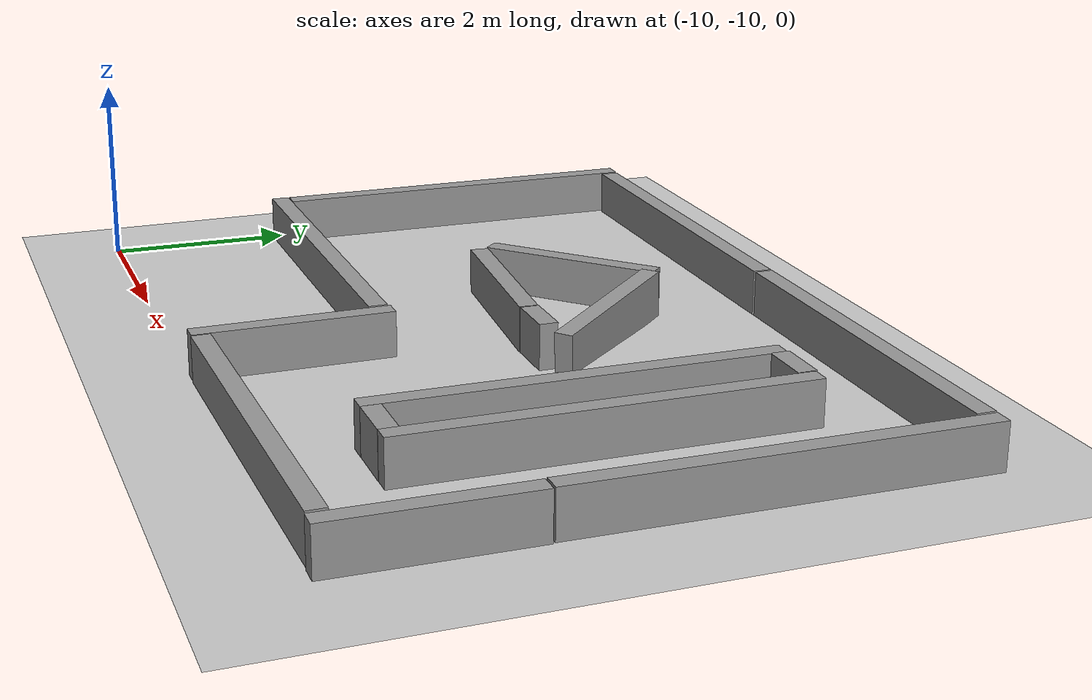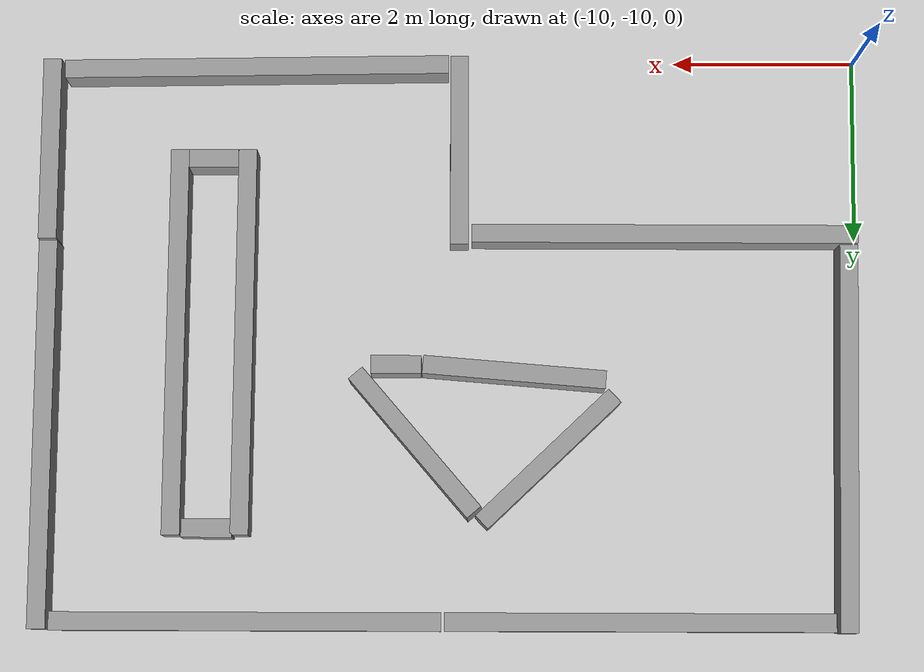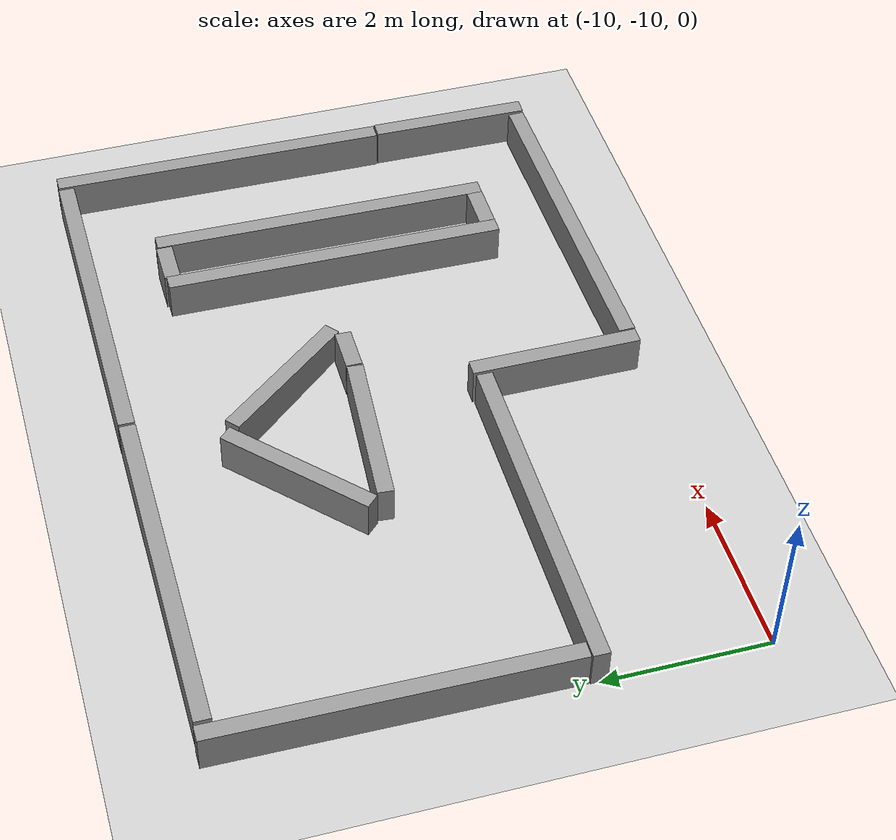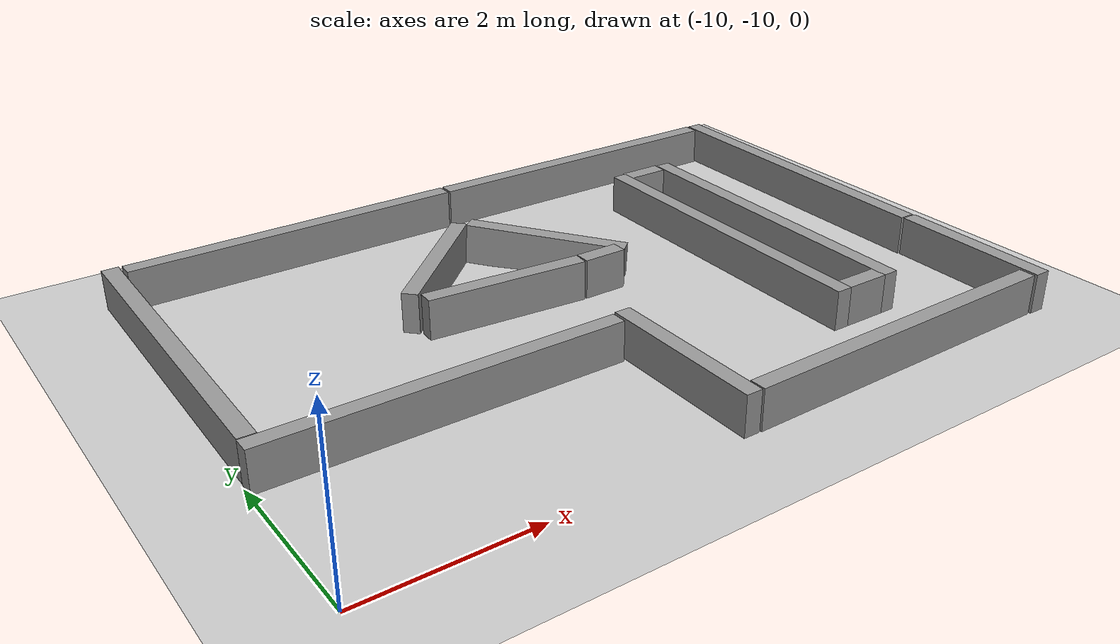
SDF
<sdf version="1.7">
 <world name="default">
  <light name="sun" type="directional">
   <pose>0 0 10 0 -0 0</pose>
   <diffuse>0.8 0.8 0.8 1</diffuse>
   <specular>0.2 0.2 0.2 1</specular>
   <attenuation>
    <range>1000</range>
    <constant>0.9</constant>
    <linear>0.01</linear>
    <quadratic>0.001</quadratic>
   </attenuation>
   <direction>-0.5 0.1 -0.9</direction>
   <spot><inner_angle>0</inner_angle><outer_angle>0</outer_angle><falloff>0</falloff></spot>
  </light>
  <model name="ground_plane">
   <static>1</static>
   <link name="link">
    <collision name="collision">
     <geometry><plane><normal>0 0 1</normal><size>100 100</size></plane></geometry>
     <surface>
      <contact><collide_bitmask>65535</collide_bitmask></contact>
      <friction><ode><mu>100</mu><mu2>50</mu2></ode></friction>
     </surface>
    </collision>
    <visual name="visual">
     <cast_shadows>0</cast_shadows>
     <geometry><plane><normal>0 0 1</normal><size>100 100</size></plane></geometry>
     <material>
      <script><uri>file://media/materials/scripts/gazebo.material</uri><name>Gazebo/Grey</name></script>
     </material>
    </visual>
   </link>
  </model>
  <gravity>0 0 -9.8</gravity>
  <magnetic_field>6e-06 2.3e-05 -4.2e-05</magnetic_field>
  <atmosphere type="adiabatic"/>
  <physics type="ode">
   <max_step_size>0.001</max_step_size>
   <real_time_factor>1</real_time_factor>
   <real_time_update_rate>1000</real_time_update_rate>
  </physics>
  <scene><ambient>0.4 0.4 0.4 1</ambient><background>0.7 0.7 0.7 1</background><shadows>1</shadows></scene>
  <audio><device>default</device></audio>
  <spherical_coordinates>
   <surface_model>EARTH_WGS84</surface_model>
   <latitude_deg>0</latitude_deg>
   <longitude_deg>0</longitude_deg>
   <elevation>0</elevation>
   <heading_deg>0</heading_deg>
  </spherical_coordinates>
  <model name="wall_SDP">
   <link name="link">
    <pose>-1.45297 0 0.227242 0 -0 0</pose>
    <inertial>
     <mass>0.102624</mass>
     <inertia>
      <ixx>0.0025526</ixx>
      <ixy>0</ixy>
      <ixz>0</ixz>
      <iyy>0.155853</iyy>
      <iyz>0</iyz>
      <izz>0.153985</izz>
     </inertia>
    </inertial>
    <visual name="visual">
     <cast_shadows>0</cast_shadows>
     <geometry><box><size>4.2386 0.2 0.508408</size></box></geometry>
     <material>
      <script>
       <uri>model://grey_wall/materials/scripts</uri>
       <uri>model://grey_wall/materials/textures</uri>
       <name>vrc/grey_wall</name>
      </script>
      <shader type="pixel"><normal_map>__default__</normal_map></shader>
     </material>
    </visual>
    <collision name="collision">
     <geometry><box><size>4.2386 0.2 0.508408</size></box></geometry>
     <surface>
      <friction>
       <ode><mu>1</mu><mu2>1</mu2><fdir1>0 0 0</fdir1><slip1>0</slip1><slip2>0</slip2></ode>
       <torsional>
        <coefficient>1</coefficient>
        <patch_radius>0</patch_radius>
        <surface_radius>0</surface_radius>
        <use_patch_radius>1</use_patch_radius>
        <ode><slip>0</slip></ode>
       </torsional>
      </friction>
      <bounce><restitution_coefficient>0</restitution_coefficient><threshold>1e+06</threshold></bounce>
      <contact>
       <collide_without_contact>0</collide_without_contact>
       <collide_without_contact_bitmask>1</collide_without_contact_bitmask>
       <collide_bitmask>1</collide_bitmask>
       <ode>
        <soft_cfm>0</soft_cfm>
        <soft_erp>0.2</soft_erp>
        <kp>1e+13</kp>
        <kd>1</kd>
        <max_vel>0.01</max_vel>
        <min_depth>0</min_depth>
       </ode>
       <bullet>
        <split_impulse>1</split_impulse>
        <split_impulse_penetration_threshold>-0.01</split_impulse_penetration_threshold>
        <soft_cfm>0</soft_cfm>
        <soft_erp>0.2</soft_erp>
        <kp>1e+13</kp>
        <kd>1</kd>
       </bullet>
      </contact>
     </surface>
    </collision>
   </link>
   <static>1</static>
   <pose>-1.91046 -9.83679 0 0 -0 0.01521</pose>
  </model>
  <model name="wall_SDP_clone">
   <link name="link">
    <pose>-1.45297 0 0.227242 0 -0 0</pose>
    <inertial>
     <mass>0.102624</mass>
     <inertia>
      <ixx>0.0025526</ixx>
      <ixy>0</ixy>
      <ixz>0</ixz>
      <iyy>0.155853</iyy>
      <iyz>0</iyz>
      <izz>0.153985</izz>
     </inertia>
    </inertial>
    <visual name="visual">
     <cast_shadows>0</cast_shadows>
     <geometry><box><size>4.2386 0.2 0.508408</size></box></geometry>
     <material>
      <script>
       <uri>model://grey_wall/materials/scripts</uri>
       <uri>model://grey_wall/materials/textures</uri>
       <name>vrc/grey_wall</name>
      </script>
      <shader type="pixel"><normal_map>__default__</normal_map></shader>
     </material>
    </visual>
    <collision name="collision">
     <geometry><box><size>4.2386 0.2 0.508408</size></box></geometry>
     <surface>
      <friction>
       <ode><mu>1</mu><mu2>1</mu2><fdir1>0 0 0</fdir1><slip1>0</slip1><slip2>0</slip2></ode>
       <torsional>
        <coefficient>1</coefficient>
        <patch_radius>0</patch_radius>
        <surface_radius>0</surface_radius>
        <use_patch_radius>1</use_patch_radius>
        <ode><slip>0</slip></ode>
       </torsional>
      </friction>
      <bounce><restitution_coefficient>0</restitution_coefficient><threshold>1e+06</threshold></bounce>
      <contact>
       <collide_without_contact>0</collide_without_contact>
       <collide_without_contact_bitmask>1</collide_without_contact_bitmask>
       <collide_bitmask>1</collide_bitmask>
       <ode>
        <soft_cfm>0</soft_cfm>
        <soft_erp>0.2</soft_erp>
        <kp>1e+13</kp>
        <kd>1</kd>
        <max_vel>0.01</max_vel>
        <min_depth>0</min_depth>
       </ode>
       <bullet>
        <split_impulse>1</split_impulse>
        <split_impulse_penetration_threshold>-0.01</split_impulse_penetration_threshold>
        <soft_cfm>0</soft_cfm>
        <soft_erp>0.2</soft_erp>
        <kp>1e+13</kp>
        <kd>1</kd>
       </bullet>
      </contact>
     </surface>
    </collision>
   </link>
   <static>1</static>
   <pose>-6.40639 -8.00603 0 0 -0 0</pose>
  </model>
  <model name="wall_SDP_clone_0">
   <link name="link">
    <pose>-1.45297 0 0.227242 0 -0 0</pose>
    <inertial>
     <mass>0.102624</mass>
     <inertia>
      <ixx>0.0025526</ixx>
      <ixy>0</ixy>
      <ixz>0</ixz>
      <iyy>0.155853</iyy>
      <iyz>0</iyz>
      <izz>0.153985</izz>
     </inertia>
    </inertial>
    <visual name="visual">
     <cast_shadows>0</cast_shadows>
     <geometry><box><size>4.2386 0.2 0.508408</size></box></geometry>
     <material>
      <script>
       <uri>model://grey_wall/materials/scripts</uri>
       <uri>model://grey_wall/materials/textures</uri>
       <name>vrc/grey_wall</name>
      </script>
      <shader type="pixel"><normal_map>__default__</normal_map></shader>
     </material>
    </visual>
    <collision name="collision">
     <geometry><box><size>4.2386 0.2 0.508408</size></box></geometry>
     <surface>
      <friction>
       <ode><mu>1</mu><mu2>1</mu2><fdir1>0 0 0</fdir1><slip1>0</slip1><slip2>0</slip2></ode>
       <torsional>
        <coefficient>1</coefficient>
        <patch_radius>0</patch_radius>
        <surface_radius>0</surface_radius>
        <use_patch_radius>1</use_patch_radius>
        <ode><slip>0</slip></ode>
       </torsional>
      </friction>
      <bounce><restitution_coefficient>0</restitution_coefficient><threshold>1e+06</threshold></bounce>
      <contact>
       <collide_without_contact>0</collide_without_contact>
       <collide_without_contact_bitmask>1</collide_without_contact_bitmask>
       <collide_bitmask>1</collide_bitmask>
       <ode>
        <soft_cfm>0</soft_cfm>
        <soft_erp>0.2</soft_erp>
        <kp>1e+13</kp>
        <kd>1</kd>
        <max_vel>0.01</max_vel>
        <min_depth>0</min_depth>
       </ode>
       <bullet>
        <split_impulse>1</split_impulse>
        <split_impulse_penetration_threshold>-0.01</split_impulse_penetration_threshold>
        <soft_cfm>0</soft_cfm>
        <soft_erp>0.2</soft_erp>
        <kp>1e+13</kp>
        <kd>1</kd>
       </bullet>
      </contact>
     </surface>
    </collision>
   </link>
   <static>1</static>
   <pose>-9.83368 -4.32184 0 0 -0 1.55936</pose>
  </model>
  <model name="wall_SDP_wall_short">
   <link name="link">
    <pose>-0.408909 0 0.227242 0 -0 0</pose>
    <inertial>
     <mass>0.0508446</mass>
     <inertia>
      <ixx>0.00126467</ixx>
      <ixy>0</ixy>
      <ixz>0</ixz>
      <iyy>0.0197805</iyy>
      <iyz>0</iyz>
      <izz>0.0188548</izz>
     </inertia>
    </inertial>
    <visual name="visual">
     <cast_shadows>0</cast_shadows>
     <geometry><box><size>2.09999 0.2 0.508408</size></box></geometry>
     <material>
      <script>
       <uri>model://grey_wall/materials/scripts</uri>
       <uri>model://grey_wall/materials/textures</uri>
       <name>vrc/grey_wall</name>
      </script>
      <shader type="pixel"><normal_map>__default__</normal_map></shader>
     </material>
    </visual>
    <collision name="collision">
     <geometry><box><size>2.09999 0.2 0.508408</size></box></geometry>
     <surface>
      <friction>
       <ode><mu>1</mu><mu2>1</mu2><fdir1>0 0 0</fdir1><slip1>0</slip1><slip2>0</slip2></ode>
       <torsional>
        <coefficient>1</coefficient>
        <patch_radius>0</patch_radius>
        <surface_radius>0</surface_radius>
        <use_patch_radius>1</use_patch_radius>
        <ode><slip>0</slip></ode>
       </torsional>
      </friction>
      <bounce><restitution_coefficient>0</restitution_coefficient><threshold>1e+06</threshold></bounce>
      <contact>
       <collide_without_contact>0</collide_without_contact>
       <collide_without_contact_bitmask>1</collide_without_contact_bitmask>
       <collide_bitmask>1</collide_bitmask>
       <ode>
        <soft_cfm>0</soft_cfm>
        <soft_erp>0.2</soft_erp>
        <kp>1e+13</kp>
        <kd>1</kd>
        <max_vel>0.01</max_vel>
        <min_depth>0</min_depth>
       </ode>
       <bullet>
        <split_impulse>1</split_impulse>
        <split_impulse_penetration_threshold>-0.01</split_impulse_penetration_threshold>
        <soft_cfm>0</soft_cfm>
        <soft_erp>0.2</soft_erp>
        <kp>1e+13</kp>
        <kd>1</kd>
       </bullet>
      </contact>
     </surface>
    </collision>
   </link>
   <static>1</static>
   <pose>-5.60143 -9.34195 0 0 0 -1.56896</pose>
  </model>
  <model name="wall_SDP_clone_clone">
   <link name="link">
    <pose>-1.45297 0 0.227242 0 -0 0</pose>
    <inertial>
     <mass>0.102624</mass>
     <inertia>
      <ixx>0.0025526</ixx>
      <ixy>0</ixy>
      <ixz>0</ixz>
      <iyy>0.155853</iyy>
      <iyz>0</iyz>
      <izz>0.153985</izz>
     </inertia>
    </inertial>
    <visual name="visual">
     <cast_shadows>0</cast_shadows>
     <geometry><box><size>4.2386 0.2 0.508408</size></box></geometry>
     <material>
      <script>
       <uri>model://grey_wall/materials/scripts</uri>
       <uri>model://grey_wall/materials/textures</uri>
       <name>vrc/grey_wall</name>
      </script>
      <shader type="pixel"><normal_map>__default__</normal_map></shader>
     </material>
    </visual>
    <collision name="collision">
     <geometry><box><size>4.2386 0.2 0.508408</size></box></geometry>
     <surface>
      <friction>
       <ode><mu>1</mu><mu2>1</mu2><fdir1>0 0 0</fdir1><slip1>0</slip1><slip2>0</slip2></ode>
       <torsional>
        <coefficient>1</coefficient>
        <patch_radius>0</patch_radius>
        <surface_radius>0</surface_radius>
        <use_patch_radius>1</use_patch_radius>
        <ode><slip>0</slip></ode>
       </torsional>
      </friction>
      <bounce><restitution_coefficient>0</restitution_coefficient><threshold>1e+06</threshold></bounce>
      <contact>
       <collide_without_contact>0</collide_without_contact>
       <collide_without_contact_bitmask>1</collide_without_contact_bitmask>
       <collide_bitmask>1</collide_bitmask>
       <ode>
        <soft_cfm>0</soft_cfm>
        <soft_erp>0.2</soft_erp>
        <kp>1e+13</kp>
        <kd>1</kd>
        <max_vel>0.01</max_vel>
        <min_depth>0</min_depth>
       </ode>
       <bullet>
        <split_impulse>1</split_impulse>
        <split_impulse_penetration_threshold>-0.01</split_impulse_penetration_threshold>
        <soft_cfm>0</soft_cfm>
        <soft_erp>0.2</soft_erp>
        <kp>1e+13</kp>
        <kd>1</kd>
       </bullet>
      </contact>
     </surface>
    </collision>
   </link>
   <static>1</static>
   <pose>-6.11493 -3.76492 0 0 -0 0</pose>
  </model>
  <model name="wall_SDP_clone_clone_0">
   <link name="link">
    <pose>-1.45297 0 0.227242 0 -0 0</pose>
    <inertial>
     <mass>0.102624</mass>
     <inertia>
      <ixx>0.0025526</ixx>
      <ixy>0</ixy>
      <ixz>0</ixz>
      <iyy>0.155853</iyy>
      <iyz>0</iyz>
      <izz>0.153985</izz>
     </inertia>
    </inertial>
    <visual name="visual">
     <cast_shadows>0</cast_shadows>
     <geometry><box><size>4.2386 0.2 0.508408</size></box></geometry>
     <material>
      <script>
       <uri>model://grey_wall/materials/scripts</uri>
       <uri>model://grey_wall/materials/textures</uri>
       <name>vrc/grey_wall</name>
      </script>
      <shader type="pixel"><normal_map>__default__</normal_map></shader>
     </material>
    </visual>
    <collision name="collision">
     <geometry><box><size>4.2386 0.2 0.508408</size></box></geometry>
     <surface>
      <friction>
       <ode><mu>1</mu><mu2>1</mu2><fdir1>0 0 0</fdir1><slip1>0</slip1><slip2>0</slip2></ode>
       <torsional>
        <coefficient>1</coefficient>
        <patch_radius>0</patch_radius>
        <surface_radius>0</surface_radius>
        <use_patch_radius>1</use_patch_radius>
        <ode><slip>0</slip></ode>
       </torsional>
      </friction>
      <bounce><restitution_coefficient>0</restitution_coefficient><threshold>1e+06</threshold></bounce>
      <contact>
       <collide_without_contact>0</collide_without_contact>
       <collide_without_contact_bitmask>1</collide_without_contact_bitmask>
       <collide_bitmask>1</collide_bitmask>
       <ode>
        <soft_cfm>0</soft_cfm>
        <soft_erp>0.2</soft_erp>
        <kp>1e+13</kp>
        <kd>1</kd>
        <max_vel>0.01</max_vel>
        <min_depth>0</min_depth>
       </ode>
       <bullet>
        <split_impulse>1</split_impulse>
        <split_impulse_penetration_threshold>-0.01</split_impulse_penetration_threshold>
        <soft_cfm>0</soft_cfm>
        <soft_erp>0.2</soft_erp>
        <kp>1e+13</kp>
        <kd>1</kd>
       </bullet>
      </contact>
     </surface>
    </collision>
   </link>
   <static>1</static>
   <pose>-1.84578 -3.76268 0 0 -0 0</pose>
  </model>
  <model name="wall_SDP_clone_0_clone">
   <link name="link">
    <pose>-1.45297 0 0.227242 0 -0 0</pose>
    <inertial>
     <mass>0.102624</mass>
     <inertia>
      <ixx>0.0025526</ixx>
      <ixy>0</ixy>
      <ixz>0</ixz>
      <iyy>0.155853</iyy>
      <iyz>0</iyz>
      <izz>0.153985</izz>
     </inertia>
    </inertial>
    <visual name="visual">
     <cast_shadows>0</cast_shadows>
     <geometry><box><size>4.2386 0.2 0.508408</size></box></geometry>
     <material>
      <script>
       <uri>model://grey_wall/materials/scripts</uri>
       <uri>model://grey_wall/materials/textures</uri>
       <name>vrc/grey_wall</name>
      </script>
      <shader type="pixel"><normal_map>__default__</normal_map></shader>
     </material>
    </visual>
    <collision name="collision">
     <geometry><box><size>4.2386 0.2 0.508408</size></box></geometry>
     <surface>
      <friction>
       <ode><mu>1</mu><mu2>1</mu2><fdir1>0 0 0</fdir1><slip1>0</slip1><slip2>0</slip2></ode>
       <torsional>
        <coefficient>1</coefficient>
        <patch_radius>0</patch_radius>
        <surface_radius>0</surface_radius>
        <use_patch_radius>1</use_patch_radius>
        <ode><slip>0</slip></ode>
       </torsional>
      </friction>
      <bounce><restitution_coefficient>0</restitution_coefficient><threshold>1e+06</threshold></bounce>
      <contact>
       <collide_without_contact>0</collide_without_contact>
       <collide_without_contact_bitmask>1</collide_without_contact_bitmask>
       <collide_bitmask>1</collide_bitmask>
       <ode>
        <soft_cfm>0</soft_cfm>
        <soft_erp>0.2</soft_erp>
        <kp>1e+13</kp>
        <kd>1</kd>
        <max_vel>0.01</max_vel>
        <min_depth>0</min_depth>
       </ode>
       <bullet>
        <split_impulse>1</split_impulse>
        <split_impulse_penetration_threshold>-0.01</split_impulse_penetration_threshold>
        <soft_cfm>0</soft_cfm>
        <soft_erp>0.2</soft_erp>
        <kp>1e+13</kp>
        <kd>1</kd>
       </bullet>
      </contact>
     </surface>
    </collision>
   </link>
   <static>1</static>
   <pose>-1.05391 -4.3395 0 0 -0 1.55936</pose>
  </model>
  <model name="wall_SDP_clonger">
   <link name="link">
    <pose>-0.336919 0 0.227242 0 -0 0</pose>
    <inertial>
     <mass>0.0485467</mass>
     <inertia>
      <ixx>0.00120751</ixx>
      <ixy>0</ixy>
      <ixz>0</ixz>
      <iyy>0.0173103</iyy>
      <iyz>0</iyz>
      <izz>0.0164264</izz>
     </inertia>
    </inertial>
    <visual name="visual">
     <cast_shadows>0</cast_shadows>
     <geometry><box><size>2.00508 0.2 0.508408</size></box></geometry>
     <material>
      <script>
       <uri>model://grey_wall/materials/scripts</uri>
       <uri>model://grey_wall/materials/textures</uri>
       <name>vrc/grey_wall</name>
      </script>
      <shader type="pixel"><normal_map>__default__</normal_map></shader>
     </material>
    </visual>
    <collision name="collision">
     <geometry><box><size>2.00508 0.2 0.508408</size></box></geometry>
     <surface>
      <friction>
       <ode><mu>1</mu><mu2>1</mu2><fdir1>0 0 0</fdir1><slip1>0</slip1><slip2>0</slip2></ode>
       <torsional>
        <coefficient>1</coefficient>
        <patch_radius>0</patch_radius>
        <surface_radius>0</surface_radius>
        <use_patch_radius>1</use_patch_radius>
        <ode><slip>0</slip></ode>
       </torsional>
      </friction>
      <bounce><restitution_coefficient>0</restitution_coefficient><threshold>1e+06</threshold></bounce>
      <contact>
       <collide_without_contact>0</collide_without_contact>
       <collide_without_contact_bitmask>1</collide_without_contact_bitmask>
       <collide_bitmask>1</collide_bitmask>
       <ode>
        <soft_cfm>0</soft_cfm>
        <soft_erp>0.2</soft_erp>
        <kp>1e+13</kp>
        <kd>1</kd>
        <max_vel>0.01</max_vel>
        <min_depth>0</min_depth>
       </ode>
       <bullet>
        <split_impulse>1</split_impulse>
        <split_impulse_penetration_threshold>-0.01</split_impulse_penetration_threshold>
        <soft_cfm>0</soft_cfm>
        <soft_erp>0.2</soft_erp>
        <kp>1e+13</kp>
        <kd>1</kd>
       </bullet>
      </contact>
     </surface>
    </collision>
   </link>
   <static>1</static>
   <pose>-1.0884 -8.59787 0 0 -0 1.55936</pose>
  </model>
  <model name="wall_SDP_clone_0_clone_clone">
   <link name="link">
    <pose>-1.45297 0 0.227242 0 -0 0</pose>
    <inertial>
     <mass>0.102624</mass>
     <inertia>
      <ixx>0.0025526</ixx>
      <ixy>0</ixy>
      <ixz>0</ixz>
      <iyy>0.155853</iyy>
      <iyz>0</iyz>
      <izz>0.153985</izz>
     </inertia>
    </inertial>
    <visual name="visual">
     <cast_shadows>0</cast_shadows>
     <geometry><box><size>4.2386 0.2 0.508408</size></box></geometry>
     <material>
      <script>
       <uri>model://grey_wall/materials/scripts</uri>
       <uri>model://grey_wall/materials/textures</uri>
       <name>vrc/grey_wall</name>
      </script>
      <shader type="pixel"><normal_map>__default__</normal_map></shader>
     </material>
    </visual>
    <collision name="collision">
     <geometry><box><size>4.2386 0.2 0.508408</size></box></geometry>
     <surface>
      <friction>
       <ode><mu>1</mu><mu2>1</mu2><fdir1>0 0 0</fdir1><slip1>0</slip1><slip2>0</slip2></ode>
       <torsional>
        <coefficient>1</coefficient>
        <patch_radius>0</patch_radius>
        <surface_radius>0</surface_radius>
        <use_patch_radius>1</use_patch_radius>
        <ode><slip>0</slip></ode>
       </torsional>
      </friction>
      <bounce><restitution_coefficient>0</restitution_coefficient><threshold>1e+06</threshold></bounce>
      <contact>
       <collide_without_contact>0</collide_without_contact>
       <collide_without_contact_bitmask>1</collide_without_contact_bitmask>
       <collide_bitmask>1</collide_bitmask>
       <ode>
        <soft_cfm>0</soft_cfm>
        <soft_erp>0.2</soft_erp>
        <kp>1e+13</kp>
        <kd>1</kd>
        <max_vel>0.01</max_vel>
        <min_depth>0</min_depth>
       </ode>
       <bullet>
        <split_impulse>1</split_impulse>
        <split_impulse_penetration_threshold>-0.01</split_impulse_penetration_threshold>
        <soft_cfm>0</soft_cfm>
        <soft_erp>0.2</soft_erp>
        <kp>1e+13</kp>
        <kd>1</kd>
       </bullet>
      </contact>
     </surface>
    </collision>
   </link>
   <static>1</static>
   <pose>-2.48822 -5.35489 0 0 -0 1.55936</pose>
  </model>
  <model name="wall_SDP_clone_0_clone_clone_0">
   <link name="link">
    <pose>-1.45297 0 0.227242 0 -0 0</pose>
    <inertial>
     <mass>0.102624</mass>
     <inertia>
      <ixx>0.0025526</ixx>
      <ixy>0</ixy>
      <ixz>0</ixz>
      <iyy>0.155853</iyy>
      <iyz>0</iyz>
      <izz>0.153985</izz>
     </inertia>
    </inertial>
    <visual name="visual">
     <cast_shadows>0</cast_shadows>
     <geometry><box><size>4.2386 0.2 0.508408</size></box></geometry>
     <material>
      <script>
       <uri>model://grey_wall/materials/scripts</uri>
       <uri>model://grey_wall/materials/textures</uri>
       <name>vrc/grey_wall</name>
      </script>
      <shader type="pixel"><normal_map>__default__</normal_map></shader>
     </material>
    </visual>
    <collision name="collision">
     <geometry><box><size>4.2386 0.2 0.508408</size></box></geometry>
     <surface>
      <friction>
       <ode><mu>1</mu><mu2>1</mu2><fdir1>0 0 0</fdir1><slip1>0</slip1><slip2>0</slip2></ode>
       <torsional>
        <coefficient>1</coefficient>
        <patch_radius>0</patch_radius>
        <surface_radius>0</surface_radius>
        <use_patch_radius>1</use_patch_radius>
        <ode><slip>0</slip></ode>
       </torsional>
      </friction>
      <bounce><restitution_coefficient>0</restitution_coefficient><threshold>1e+06</threshold></bounce>
      <contact>
       <collide_without_contact>0</collide_without_contact>
       <collide_without_contact_bitmask>1</collide_without_contact_bitmask>
       <collide_bitmask>1</collide_bitmask>
       <ode>
        <soft_cfm>0</soft_cfm>
        <soft_erp>0.2</soft_erp>
        <kp>1e+13</kp>
        <kd>1</kd>
        <max_vel>0.01</max_vel>
        <min_depth>0</min_depth>
       </ode>
       <bullet>
        <split_impulse>1</split_impulse>
        <split_impulse_penetration_threshold>-0.01</split_impulse_penetration_threshold>
        <soft_cfm>0</soft_cfm>
        <soft_erp>0.2</soft_erp>
        <kp>1e+13</kp>
        <kd>1</kd>
       </bullet>
      </contact>
     </surface>
    </collision>
   </link>
   <static>1</static>
   <pose>-3.23331 -5.3574 0 0 -0 1.55936</pose>
  </model>
  <model name="wall_SDP_really_short">
   <link name="link">
    <pose>0.187906 0.006496 0.227242 0 -0 0</pose>
    <inertial>
     <mass>0.0133003</mass>
     <inertia>
      <ixx>0.000330821</ixx>
      <ixy>0</ixy>
      <ixz>0</ixz>
      <iyy>0.000620958</iyy>
      <iyz>0</iyz>
      <izz>0.000378805</izz>
     </inertia>
    </inertial>
    <visual name="visual">
     <cast_shadows>0</cast_shadows>
     <geometry><box><size>0.549337 0.2 0.508408</size></box></geometry>
     <material>
      <script>
       <uri>model://grey_wall/materials/scripts</uri>
       <uri>model://grey_wall/materials/textures</uri>
       <name>vrc/grey_wall</name>
      </script>
      <shader type="pixel"><normal_map>__default__</normal_map></shader>
     </material>
    </visual>
    <collision name="collision">
     <geometry><box><size>0.549337 0.2 0.508408</size></box></geometry>
     <surface>
      <friction>
       <ode><mu>1</mu><mu2>1</mu2><fdir1>0 0 0</fdir1><slip1>0</slip1><slip2>0</slip2></ode>
       <torsional>
        <coefficient>1</coefficient>
        <patch_radius>0</patch_radius>
        <surface_radius>0</surface_radius>
        <use_patch_radius>1</use_patch_radius>
        <ode><slip>0</slip></ode>
       </torsional>
      </friction>
      <bounce><restitution_coefficient>0</restitution_coefficient><threshold>1e+06</threshold></bounce>
      <contact>
       <collide_without_contact>0</collide_without_contact>
       <collide_without_contact_bitmask>1</collide_without_contact_bitmask>
       <collide_bitmask>1</collide_bitmask>
       <ode>
        <soft_cfm>0</soft_cfm>
        <soft_erp>0.2</soft_erp>
        <kp>1e+13</kp>
        <kd>1</kd>
        <max_vel>0.01</max_vel>
        <min_depth>0</min_depth>
       </ode>
       <bullet>
        <split_impulse>1</split_impulse>
        <split_impulse_penetration_threshold>-0.01</split_impulse_penetration_threshold>
        <soft_cfm>0</soft_cfm>
        <soft_erp>0.2</soft_erp>
        <kp>1e+13</kp>
        <kd>1</kd>
       </bullet>
      </contact>
     </surface>
    </collision>
   </link>
   <static>1</static>
   <pose>-3.05755 -4.77273 0 0 -0 0</pose>
  </model>
  <model name="wall_SDP_really_short_clone">
   <link name="link">
    <pose>0.187906 0.006496 0.227242 0 -0 0</pose>
    <inertial>
     <mass>0.0133003</mass>
     <inertia>
      <ixx>0.000330821</ixx>
      <ixy>0</ixy>
      <ixz>0</ixz>
      <iyy>0.000620958</iyy>
      <iyz>0</iyz>
      <izz>0.000378805</izz>
     </inertia>
    </inertial>
    <visual name="visual">
     <cast_shadows>0</cast_shadows>
     <geometry><box><size>0.549337 0.2 0.508408</size></box></geometry>
     <material>
      <script>
       <uri>model://grey_wall/materials/scripts</uri>
       <uri>model://grey_wall/materials/textures</uri>
       <name>vrc/grey_wall</name>
      </script>
      <shader type="pixel"><normal_map>__default__</normal_map></shader>
     </material>
    </visual>
    <collision name="collision">
     <geometry><box><size>0.549337 0.2 0.508408</size></box></geometry>
     <surface>
      <friction>
       <ode><mu>1</mu><mu2>1</mu2><fdir1>0 0 0</fdir1><slip1>0</slip1><slip2>0</slip2></ode>
       <torsional>
        <coefficient>1</coefficient>
        <patch_radius>0</patch_radius>
        <surface_radius>0</surface_radius>
        <use_patch_radius>1</use_patch_radius>
        <ode><slip>0</slip></ode>
       </torsional>
      </friction>
      <bounce><restitution_coefficient>0</restitution_coefficient><threshold>1e+06</threshold></bounce>
      <contact>
       <collide_without_contact>0</collide_without_contact>
       <collide_without_contact_bitmask>1</collide_without_contact_bitmask>
       <collide_bitmask>1</collide_bitmask>
       <ode>
        <soft_cfm>0</soft_cfm>
        <soft_erp>0.2</soft_erp>
        <kp>1e+13</kp>
        <kd>1</kd>
        <max_vel>0.01</max_vel>
        <min_depth>0</min_depth>
       </ode>
       <bullet>
        <split_impulse>1</split_impulse>
        <split_impulse_penetration_threshold>-0.01</split_impulse_penetration_threshold>
        <soft_cfm>0</soft_cfm>
        <soft_erp>0.2</soft_erp>
        <kp>1e+13</kp>
        <kd>1</kd>
       </bullet>
      </contact>
     </surface>
    </collision>
   </link>
   <static>1</static>
   <pose>-3.08529 -8.83527 0 0 -0 0</pose>
  </model>
  <model name="wall_SDP_clonger_clone">
   <link name="link">
    <pose>-0.336919 0 0.227242 0 -0 0</pose>
    <inertial>
     <mass>0.0485467</mass>
     <inertia>
      <ixx>0.00120751</ixx>
      <ixy>0</ixy>
      <ixz>0</ixz>
      <iyy>0.0173103</iyy>
      <iyz>0</iyz>
      <izz>0.0164264</izz>
     </inertia>
    </inertial>
    <visual name="visual">
     <cast_shadows>0</cast_shadows>
     <geometry><box><size>2.00508 0.2 0.508408</size></box></geometry>
     <material>
      <script>
       <uri>model://grey_wall/materials/scripts</uri>
       <uri>model://grey_wall/materials/textures</uri>
       <name>vrc/grey_wall</name>
      </script>
      <shader type="pixel"><normal_map>__default__</normal_map></shader>
     </material>
    </visual>
    <collision name="collision">
     <geometry><box><size>2.00508 0.2 0.508408</size></box></geometry>
     <surface>
      <friction>
       <ode><mu>1</mu><mu2>1</mu2><fdir1>0 0 0</fdir1><slip1>0</slip1><slip2>0</slip2></ode>
       <torsional>
        <coefficient>1</coefficient>
        <patch_radius>0</patch_radius>
        <surface_radius>0</surface_radius>
        <use_patch_radius>1</use_patch_radius>
        <ode><slip>0</slip></ode>
       </torsional>
      </friction>
      <bounce><restitution_coefficient>0</restitution_coefficient><threshold>1e+06</threshold></bounce>
      <contact>
       <collide_without_contact>0</collide_without_contact>
       <collide_without_contact_bitmask>1</collide_without_contact_bitmask>
       <collide_bitmask>1</collide_bitmask>
       <ode>
        <soft_cfm>0</soft_cfm>
        <soft_erp>0.2</soft_erp>
        <kp>1e+13</kp>
        <kd>1</kd>
        <max_vel>0.01</max_vel>
        <min_depth>0</min_depth>
       </ode>
       <bullet>
        <split_impulse>1</split_impulse>
        <split_impulse_penetration_threshold>-0.01</split_impulse_penetration_threshold>
        <soft_cfm>0</soft_cfm>
        <soft_erp>0.2</soft_erp>
        <kp>1e+13</kp>
        <kd>1</kd>
       </bullet>
      </contact>
     </surface>
    </collision>
   </link>
   <static>1</static>
   <pose>-5.35455 -5.4333 0 0.003088 -0.048729 2.27672</pose>
  </model>
  <model name="wall_SDP_clonger_clone_clone">
   <link name="link">
    <pose>-0.336919 0 0.227242 0 -0 0</pose>
    <inertial>
     <mass>0.0485467</mass>
     <inertia>
      <ixx>0.00120751</ixx>
      <ixy>0</ixy>
      <ixz>0</ixz>
      <iyy>0.0173103</iyy>
      <iyz>0</iyz>
      <izz>0.0164264</izz>
     </inertia>
    </inertial>
    <visual name="visual">
     <cast_shadows>0</cast_shadows>
     <geometry><box><size>2.00508 0.2 0.508408</size></box></geometry>
     <material>
      <script>
       <uri>model://grey_wall/materials/scripts</uri>
       <uri>model://grey_wall/materials/textures</uri>
       <name>vrc/grey_wall</name>
      </script>
      <shader type="pixel"><normal_map>__default__</normal_map></shader>
     </material>
    </visual>
    <collision name="collision">
     <geometry><box><size>2.00508 0.2 0.508408</size></box></geometry>
     <surface>
      <friction>
       <ode><mu>1</mu><mu2>1</mu2><fdir1>0 0 0</fdir1><slip1>0</slip1><slip2>0</slip2></ode>
       <torsional>
        <coefficient>1</coefficient>
        <patch_radius>0</patch_radius>
        <surface_radius>0</surface_radius>
        <use_patch_radius>1</use_patch_radius>
        <ode><slip>0</slip></ode>
       </torsional>
      </friction>
      <bounce><restitution_coefficient>0</restitution_coefficient><threshold>1e+06</threshold></bounce>
      <contact>
       <collide_without_contact>0</collide_without_contact>
       <collide_without_contact_bitmask>1</collide_without_contact_bitmask>
       <collide_bitmask>1</collide_bitmask>
       <ode>
        <soft_cfm>0</soft_cfm>
        <soft_erp>0.2</soft_erp>
        <kp>1e+13</kp>
        <kd>1</kd>
        <max_vel>0.01</max_vel>
        <min_depth>0</min_depth>
       </ode>
       <bullet>
        <split_impulse>1</split_impulse>
        <split_impulse_penetration_threshold>-0.01</split_impulse_penetration_threshold>
        <soft_cfm>0</soft_cfm>
        <soft_erp>0.2</soft_erp>
        <kp>1e+13</kp>
        <kd>1</kd>
       </bullet>
      </contact>
     </surface>
    </collision>
   </link>
   <static>1</static>
   <pose>-6.33393 -5.29638 0 0 -0 0.761623</pose>
  </model>
  <model name="wall_SDP_clonger_clone_clone_0">
   <link name="link">
    <pose>-0.336919 0 0.227242 0 -0 0</pose>
    <inertial>
     <mass>0.0485467</mass>
     <inertia>
      <ixx>0.00120751</ixx>
      <ixy>0</ixy>
      <ixz>0</ixz>
      <iyy>0.0173103</iyy>
      <iyz>0</iyz>
      <izz>0.0164264</izz>
     </inertia>
    </inertial>
    <visual name="visual">
     <cast_shadows>0</cast_shadows>
     <geometry><box><size>2.00508 0.2 0.508408</size></box></geometry>
     <material>
      <script>
       <uri>model://grey_wall/materials/scripts</uri>
       <uri>model://grey_wall/materials/textures</uri>
       <name>vrc/grey_wall</name>
      </script>
      <shader type="pixel"><normal_map>__default__</normal_map></shader>
     </material>
    </visual>
    <collision name="collision">
     <geometry><box><size>2.00508 0.2 0.508408</size></box></geometry>
     <surface>
      <friction>
       <ode><mu>1</mu><mu2>1</mu2><fdir1>0 0 0</fdir1><slip1>0</slip1><slip2>0</slip2></ode>
       <torsional>
        <coefficient>1</coefficient>
        <patch_radius>0</patch_radius>
        <surface_radius>0</surface_radius>
        <use_patch_radius>1</use_patch_radius>
        <ode><slip>0</slip></ode>
       </torsional>
      </friction>
      <bounce><restitution_coefficient>0</restitution_coefficient><threshold>1e+06</threshold></bounce>
      <contact>
       <collide_without_contact>0</collide_without_contact>
       <collide_without_contact_bitmask>1</collide_without_contact_bitmask>
       <collide_bitmask>1</collide_bitmask>
       <ode>
        <soft_cfm>0</soft_cfm>
        <soft_erp>0.2</soft_erp>
        <kp>1e+13</kp>
        <kd>1</kd>
        <max_vel>0.01</max_vel>
        <min_depth>0</min_depth>
       </ode>
       <bullet>
        <split_impulse>1</split_impulse>
        <split_impulse_penetration_threshold>-0.01</split_impulse_penetration_threshold>
        <soft_cfm>0</soft_cfm>
        <soft_erp>0.2</soft_erp>
        <kp>1e+13</kp>
        <kd>1</kd>
       </bullet>
      </contact>
     </surface>
    </collision>
   </link>
   <static>1</static>
   <pose>-6.54356 -6.44869 0 0 -0 3.05963</pose>
  </model>
  <model name="wall_SDP_really_short_clone_clone">
   <link name="link">
    <pose>0.187906 0.006496 0.227242 0 -0 0</pose>
    <inertial>
     <mass>0.0133003</mass>
     <inertia>
      <ixx>0.000330821</ixx>
      <ixy>0</ixy>
      <ixz>0</ixz>
      <iyy>0.000620958</iyy>
      <iyz>0</iyz>
      <izz>0.000378805</izz>
     </inertia>
    </inertial>
    <visual name="visual">
     <cast_shadows>0</cast_shadows>
     <geometry><box><size>0.549337 0.2 0.508408</size></box></geometry>
     <material>
      <script>
       <uri>model://grey_wall/materials/scripts</uri>
       <uri>model://grey_wall/materials/textures</uri>
       <name>vrc/grey_wall</name>
      </script>
      <shader type="pixel"><normal_map>__default__</normal_map></shader>
     </material>
    </visual>
    <collision name="collision">
     <geometry><box><size>0.549337 0.2 0.508408</size></box></geometry>
     <surface>
      <friction>
       <ode><mu>1</mu><mu2>1</mu2><fdir1>0 0 0</fdir1><slip1>0</slip1><slip2>0</slip2></ode>
       <torsional>
        <coefficient>1</coefficient>
        <patch_radius>0</patch_radius>
        <surface_radius>0</surface_radius>
        <use_patch_radius>1</use_patch_radius>
        <ode><slip>0</slip></ode>
       </torsional>
      </friction>
      <bounce><restitution_coefficient>0</restitution_coefficient><threshold>1e+06</threshold></bounce>
      <contact>
       <collide_without_contact>0</collide_without_contact>
       <collide_without_contact_bitmask>1</collide_without_contact_bitmask>
       <collide_bitmask>1</collide_bitmask>
       <ode>
        <soft_cfm>0</soft_cfm>
        <soft_erp>0.2</soft_erp>
        <kp>1e+13</kp>
        <kd>1</kd>
        <max_vel>0.01</max_vel>
        <min_depth>0</min_depth>
       </ode>
       <bullet>
        <split_impulse>1</split_impulse>
        <split_impulse_penetration_threshold>-0.01</split_impulse_penetration_threshold>
        <soft_cfm>0</soft_cfm>
        <soft_erp>0.2</soft_erp>
        <kp>1e+13</kp>
        <kd>1</kd>
       </bullet>
      </contact>
     </surface>
    </collision>
   </link>
   <static>1</static>
   <pose>-5.10454 -6.56103 0 0 -0 0</pose>
  </model>
 </world>
</sdf>
